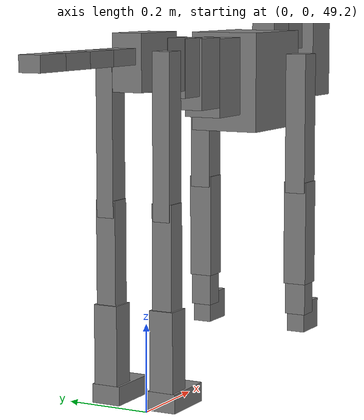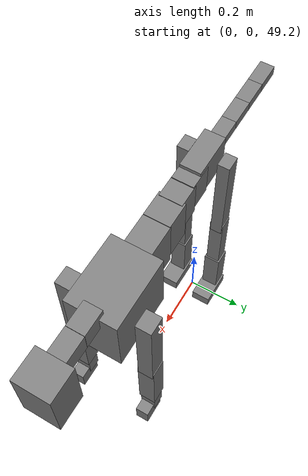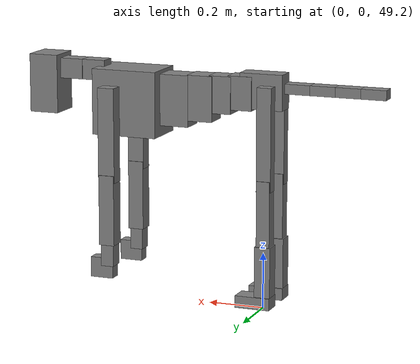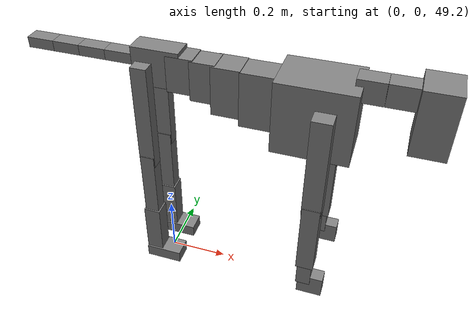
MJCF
<mujoco model="dog">

    <default>
        <joint armature="0.02" stiffness="1" damping="0.2" limited="true"/>
        <geom condim="3" friction="1 0.05 0.05" margin="0.01"/>
        <motor ctrllimited="true" ctrlrange="-1.0 1.0" forcelimited="true" gear="50"/>
    </default>

    <compiler inertiafromgeom="true" angle="radian"/>

    <option timestep="0.016" iterations="50" tolerance="1e-10" solver="Newton" jacobian="dense" cone="pyramidal"/>

    <size nconmax="20000" njmax="60000" nstack="5000000"/>
    <visual>
        <map force="0.1" zfar="30"/>
        <rgba haze="0.15 0.25 0.35 1"/>
        <quality shadowsize="2048"/>
        <global offwidth="800" offheight="800"/>
    </visual>

    <asset>
        <texture type="skybox" builtin="gradient" rgb1="0.3 0.5 0.7" rgb2="0 0 0" width="512" height="512"/>
        <texture name="texplane" type="2d" builtin="checker" rgb1=".2 .3 .4" rgb2=".1 0.15 0.2" width="512" height="512"
                 mark="cross" markrgb=".8 .8 .8"/>
        <texture name="texgeom" type="cube" builtin="flat" mark="cross" width="127" height="1278" rgb1="0.8 0.6 0.4"
                 rgb2="0.8 0.6 0.4" markrgb="1 1 1" random="0.01"/>

        <material name="matplane" reflectance="0.3" texture="texplane" texrepeat="1 1" texuniform="true"/>
        <material name="matgeom" texture="texgeom" texuniform="true" rgba="0.8 0.6 .4 1"/>
    </asset>

    <worldbody>
        <geom name="floor" pos="0 0 0" size="0 0 .25" type="plane" material="matplane" condim="3"/>

        <light directional="false" diffuse=".2 .2 .2" specular="0 0 0" pos="0 0 5" dir="0 0 -1" castshadow="false"/>
        <light mode="targetbodycom" target="torso" directional="false" diffuse=".8 .8 .8" specular="0.3 0.3 0.3"
               pos="0 0 4.0" dir="0 0 -1"/>

        <body name="root" pos="0 0 50">
            <freejoint name="root_1"/>
            <geom type="box" pos="0 0 -0.02" size="0.0774  0.0358  0.063" density="2030"/>

            <body name="spine1" pos="0.054 0 0">
                <joint name="spine1_y" axis="0 1 0" range="0 0.7" limited="true"/>
                <geom type="box" pos="0.02375 0 -0.03" size="0.04375  0.0375  0.05985" density="2030"/>

                <body name="spine2" pos="0.0612 0 0">
                    <joint name="spine2_y" axis="0 1 0" range="-0.15 0.15" limited="true"/>
                    <geom type="box" pos="0.03555  0  -0.04" size="0.04055  0.039  0.06615" density="2030"/>

                    <body name="spine3" pos="0.0730 0 0">
                        <joint name="spine3_y" axis="0 1 0" range="-0.15 0.15" limited="true"/>
                        <geom type="box" pos="0.03555  0  -0.057" size="0.04555  0.0445  0.081" density="2030"/>

                        <body name="spine4" pos="0.0780 0 0">
                            <joint name="spine4_y" axis="0 1 0" range="-0.15 0.15" limited="true"/>
                            <geom type="box" pos="0.05265  0  -0.07" size="0.05265  0.045  0.09135" density="2030"/>

                            <body name="torso" pos="0.1082 0 0">
                                <joint name="torso_y" axis="0 1 0" range="-0.15 0.15" limited="true"/>
                                <geom type="box" pos="0.11925  0  -0.085" size="0.11925  0.085  0.11745"
                                      density="2030"/>

                                <body name="neck1" pos="0.2160  0   0.0180">
                                    <joint name="neck1_y" axis="0 1 0" range="-1.2  -1" limited="true"/>
                                    <geom type="box" pos="0.0423  0  0" size="0.0423  0.03  0.036" density="2325"/>

                                    <body name="neck2" pos="0.0853  0  0">
                                        <joint name="neck2_y" axis="0 1 0" range="0.1  0" limited="true"/>
                                        <geom type="box" pos="0.0423  0  0" size="0.0423  0.03  0.036" density="2325"/>

                                        <body name="head" pos="0.0853  0  0">
                                            <joint name="head_y" axis="0 1 0" range="-0.3  -0.2" limited="true"/>
                                            <geom type="box" pos="0.0531  0  -0.055" size="0.0531  0.06  0.1044"
                                                  density="4030"/>

                                        </body>
                                    </body>
                                </body>

                                <body name="front_shoulder" pos="0.156  0   -0.0480">
                                    <joint name="front_shoulder_y" axis="0 1 0" range="-1 1.5" limited="true"/>
                                    <geom type="box" pos="0 0.13 -0.1419" size="0.0300  0.0257  0.1686" density="1158"/>
                                    <geom type="box" pos="0 -0.13 -0.1419" size="0.0300  0.0257  0.1686"
                                          density="1158"/>

                                    <body name="front_elbow" pos="0  0  -0.2839">
                                        <joint name="front_elbow_y" axis="0 1 0" range="-2 0" limited="true"/>
                                        <geom type="box" pos="0 0.13 -0.1257" size="0.0281  0.0287  0.1257"
                                              density="1081"/>
                                        <geom type="box" pos="0 -0.13 -0.1257" size="0.0281  0.0287  0.1257"
                                              density="1081"/>

                                        <body name="front_wrist" pos="0  0  -0.2513">
                                            <joint name="front_wrist_y" axis="0 1 0" range="-0.2 0" limited="true"/>
                                            <geom type="box" pos="0 0.13 -0.0316" size="0.0233  0.0259  0.0448"
                                                  density="1664"/>
                                            <geom type="box" pos="0 -0.13 -0.0316" size="0.0233  0.0259  0.0448"
                                                  density="1664"/>

                                            <body name="front_finger_end" pos="0  0  -0.0632">
                                                <joint name="front_finger_y" axis="0 1 0" range="-0.4 1"
                                                       limited="true"/>
                                                <geom type="box" pos="0.0225  0.13  -0.0212"
                                                      size="0.0413  0.0225  0.0362" density="1515"/>
                                                <geom type="box" pos="0.0225  -0.13  -0.0212"
                                                      size="0.0413  0.0225  0.0362" density="1515"/>

                                            </body>

                                        </body>
                                    </body>
                                </body>

                            </body>
                        </body>
                    </body>
                </body>
            </body>

            <body name="back_hip" pos="-0.03 0 -0.018">
                <joint name="back_hip_y" axis="0 1 0" range="-1.5 0.3" limited="true"/>
                <geom type="box" pos="0 0.07 -0.1593" size="0.0261  0.0204  0.1821" density="1154"/>
                <geom type="box" pos="0 -0.07 -0.1593" size="0.0261  0.0204  0.1821" density="1154"/>

                <body name="back_knee" pos="0  0  -0.3187">
                    <joint name="back_knee_y" axis="0 1 0" range="0 2.8" limited="true"/>
                    <geom type="box" pos="0 0.07 -0.1140" size="0.0239  0.0236  0.1296" density="1227"/>
                    <geom type="box" pos="0 -0.07 -0.1140" size="0.0239  0.0236  0.1296" density="1227"/>

                    <body name="back_ankle" pos="0  0  -0.2281">
                        <joint name="back_ankle_y" axis="0 1 0" range="-2.2 0" limited="true"/>
                        <geom type="box" pos="0 0.07 -0.0917" size="0.0284  0.0284  0.1029" density="1284"/>
                        <geom type="box" pos="0 -0.07 -0.0917" size="0.0284  0.0284  0.1029" density="1284"/>

                        <body name="back_toe_end" pos="0  0  -0.1834">
                            <joint name="back_toe_y" axis="0 1 0" range="-0.4 1" limited="true"/>
                            <geom type="box" pos="0.0341  0.07  -0.0065" size="0.0626  0.0341  0.0215" density="1515"/>
                            <geom type="box" pos="0.0341  -0.07  -0.0065" size="0.0626  0.0341  0.0215" density="1515"/>

                        </body>
                    </body>
                </body>
            </body>

            <body name="tail1" pos="-0.074 0 -0.006">
                <joint name="tail1_y" axis="0 1 0" range="-0.2 0.2" limited="true"/>
                <geom type="box" pos="-0.0536  0  0" size="0.045  0.025  0.0175" density="1587"/>

                <body name="tail2" pos="-0.09 0 0">
                    <joint name="tail2_y" axis="0 1 0" range="-0.2 0.2" limited="true"/>
                    <geom type="box" pos="-0.0536  0  0" size="0.045  0.025  0.0175" density="1587"/>

                    <body name="tail3" pos="-0.09 0 0">
                        <joint name="tail3_y" axis="0 1 0" range="-0.2 0.2" limited="true"/>
                        <geom type="box" pos="-0.0536  0  0" size="0.045  0.025  0.0175" density="1587"/>

                        <body name="tail4" pos="-0.09 0 0">
                            <joint name="tail4_y" axis="0 1 0" range="-0.2 0.2" limited="true"/>
                            <geom type="box" pos="-0.0536  0  0" size="0.045  0.025  0.0175" density="1587"/>

                        </body>
                    </body>
                </body>
            </body>
        </body>
    </worldbody>

    <actuator>
        <motor joint="spine1_y" forcerange="-150 150     "/>
        <motor joint="spine2_y" forcerange="-150 150     "/>
        <motor joint="spine3_y" forcerange="-150 150     "/>
        <motor joint="spine4_y" forcerange="-150 150     "/>
        <motor joint="torso_y" forcerange="-150 150     "/>
        <motor joint="neck1_y" forcerange="-100 100       "/>
        <motor joint="neck2_y" forcerange="-100 100       "/>
        <motor joint="head_y" forcerange="-150 150       "/>
        <motor joint="front_shoulder_y" forcerange="-124.21 146.88"/>
        <motor joint="front_elbow_y" forcerange="-198.15 110.74"/>
        <motor joint="front_wrist_y" forcerange="-69.99 137.09"/>
        <motor joint="front_finger_y" forcerange="-23.00 57.04"/>
        <motor joint="back_hip_y" forcerange="-208.64 263.91"/>
        <motor joint="back_knee_y" forcerange="-245.55 297.04"/>
        <motor joint="back_angle_y" forcerange="-160.52 193.52"/>
        <motor joint="back_toe_y" forcerange="-120.49 72.50"/>
        <motor joint="tail1_y" forcerange="-50 50     "/>
        <motor joint="tail2_y" forcerange="-50 50     "/>
        <motor joint="tail3_y" forcerange="-50 50     "/>
        <motor joint="tail4_y" forcerange="-50 50     "/>
    </actuator>
</mujoco>
